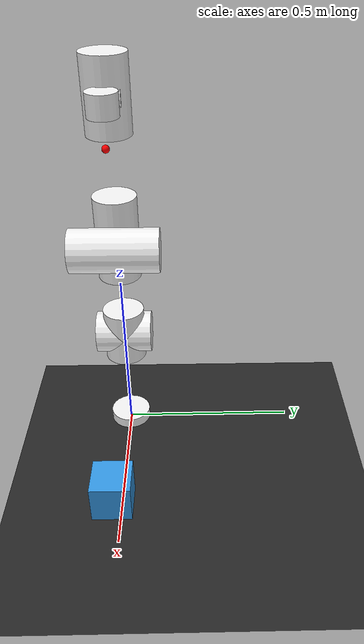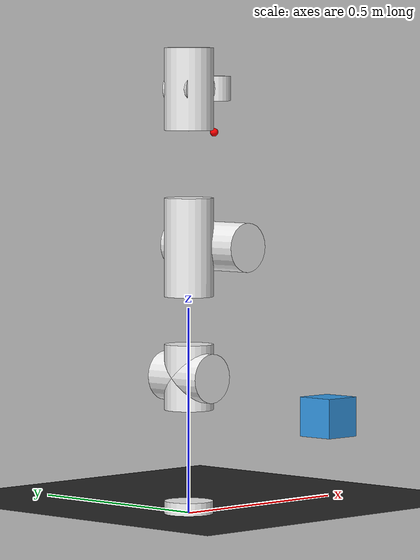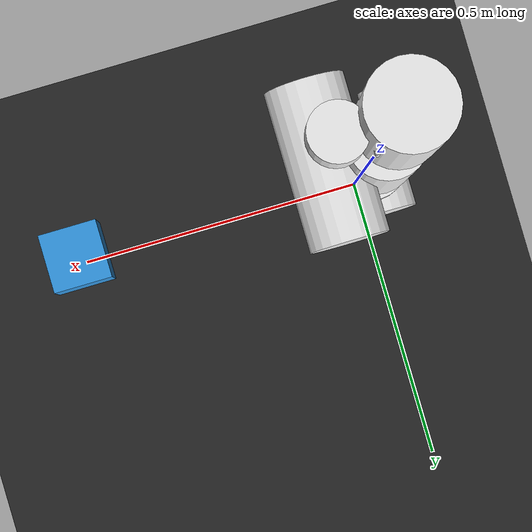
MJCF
<mujoco model="franka_panda">
    <compiler angle="radian" meshdir="assets" autolimits="true"/>

    <option timestep="0.002" gravity="0 0 -9.81" integrator="implicitfast"/>

    <visual>
        <headlight ambient="0.5 0.5 0.5" diffuse="0.8 0.8 0.8" specular="0.3 0.3 0.3"/>
        <rgba haze="0.15 0.25 0.35 1"/>
        <global azimuth="120" elevation="-20"/>
    </visual>

    <asset>
        <texture name="grid" type="2d" builtin="checker" width="512" height="512"
                 rgb1="0.1 0.1 0.1" rgb2="0.2 0.2 0.2"/>
        <material name="grid" texture="grid" texrepeat="2 2" texuniform="true" reflectance="0.2"/>
        <material name="panda_white" rgba="0.95 0.95 0.95 1"/>
    </asset>

    <worldbody>
        <!-- Ground -->
        <light name="spotlight" mode="targetbodycom" target="panda_link0"
               pos="0 0 3" dir="0 0 -1" diffuse="0.8 0.8 0.8" specular="0.3 0.3 0.3"/>
        <geom name="floor" type="plane" size="2 2 0.05" material="grid" condim="3"/>

        <!-- Panda Robot -->
        <body name="panda_link0" pos="0 0 0">
            <inertial mass="3.06" pos="0 0 0.05"
                      diaginertia="0.3 0.3 0.3"/>
            <geom type="cylinder" size="0.06 0.03" rgba="0.95 0.95 0.95 1"/>

            <!-- Joint 1 (Base rotation) -->
            <body name="panda_link1" pos="0 0 0.333">
                <inertial mass="2.74" pos="0 0 -0.07"
                          diaginertia="0.1 0.1 0.1"/>
                <joint name="panda_joint1" type="hinge" axis="0 0 1"
                       range="-2.8973 2.8973" damping="10"/>
                <geom type="cylinder" size="0.06 0.08" rgba="0.95 0.95 0.95 1"/>

                <!-- Joint 2 (Shoulder) -->
                <body name="panda_link2" pos="0 0 0" quat="0.707107 -0.707107 0 0">
                    <inertial mass="2.74" pos="0 -0.06 0.07"
                              diaginertia="0.1 0.1 0.1"/>
                    <joint name="panda_joint2" type="hinge" axis="0 0 1"
                           range="-1.7628 1.7628" damping="10"/>
                    <geom type="cylinder" size="0.06 0.08" rgba="0.95 0.95 0.95 1"/>

                    <!-- Joint 3 (Upper arm) -->
                    <body name="panda_link3" pos="0 -0.316 0" quat="0.707107 0.707107 0 0">
                        <inertial mass="2.38" pos="0.04 0.03 -0.12"
                                  diaginertia="0.1 0.1 0.1"/>
                        <joint name="panda_joint3" type="hinge" axis="0 0 1"
                               range="-2.8973 2.8973" damping="10"/>
                        <geom type="cylinder" size="0.06 0.12" rgba="0.95 0.95 0.95 1"/>

                        <!-- Joint 4 (Elbow) -->
                        <body name="panda_link4" pos="0.0825 0 0" quat="0.707107 0.707107 0 0">
                            <inertial mass="2.38" pos="-0.04 0.03 0.12"
                                      diaginertia="0.1 0.1 0.1"/>
                            <joint name="panda_joint4" type="hinge" axis="0 0 1"
                                   range="-3.0718 -0.0698" damping="10"/>
                            <geom type="cylinder" size="0.06 0.12" rgba="0.95 0.95 0.95 1"/>

                            <!-- Joint 5 (Forearm) -->
                            <body name="panda_link5" pos="-0.0825 0.384 0" quat="0.707107 -0.707107 0 0">
                                <inertial mass="2.74" pos="0 0.05 -0.26"
                                          diaginertia="0.1 0.1 0.1"/>
                                <joint name="panda_joint5" type="hinge" axis="0 0 1"
                                       range="-2.8973 2.8973" damping="10"/>
                                <geom type="cylinder" size="0.06 0.1" rgba="0.95 0.95 0.95 1"/>

                                <!-- Joint 6 (Wrist) -->
                                <body name="panda_link6" pos="0 0 0" quat="0.707107 0.707107 0 0">
                                    <inertial mass="1.55" pos="0.05 0.01 0.02"
                                              diaginertia="0.05 0.05 0.05"/>
                                    <joint name="panda_joint6" type="hinge" axis="0 0 1"
                                           range="-0.0175 3.7525" damping="5"/>
                                    <geom type="cylinder" size="0.05 0.04" rgba="0.95 0.95 0.95 1"/>

                                    <!-- Joint 7 (Flange) -->
                                    <body name="panda_link7" pos="0.088 0 0" quat="0.707107 0.707107 0 0">
                                        <inertial mass="0.5" pos="0 0 0.05"
                                                  diaginertia="0.01 0.01 0.01"/>
                                        <joint name="panda_joint7" type="hinge" axis="0 0 1"
                                               range="-2.8973 2.8973" damping="5"/>
                                        <geom type="cylinder" size="0.04 0.03" rgba="0.95 0.95 0.95 1"/>

                                        <!-- End effector site -->
                                        <site name="ee_site" pos="0 0 0.107" size="0.01"
                                              rgba="1 0 0 1"/>
                                    </body>
                                </body>
                            </body>
                        </body>
                    </body>
                </body>
            </body>
        </body>

        <!-- Target object for manipulation -->
        <body name="target_box" pos="0.5 0 0.2">
            <freejoint/>
            <geom name="box" type="box" size="0.05 0.05 0.05"
                  rgba="0.2 0.6 0.9 1" mass="0.1" condim="3"/>
            <site name="target_site" pos="0 0 0" size="0.02" rgba="0 1 0 1"/>
        </body>
    </worldbody>

    <actuator>
        <!-- Position servos for all 7 joints -->
        <position name="actuator1" joint="panda_joint1" kp="4500" ctrlrange="-2.8973 2.8973"/>
        <position name="actuator2" joint="panda_joint2" kp="4500" ctrlrange="-1.7628 1.7628"/>
        <position name="actuator3" joint="panda_joint3" kp="3500" ctrlrange="-2.8973 2.8973"/>
        <position name="actuator4" joint="panda_joint4" kp="3500" ctrlrange="-3.0718 -0.0698"/>
        <position name="actuator5" joint="panda_joint5" kp="2000" ctrlrange="-2.8973 2.8973"/>
        <position name="actuator6" joint="panda_joint6" kp="2000" ctrlrange="-0.0175 3.7525"/>
        <position name="actuator7" joint="panda_joint7" kp="2000" ctrlrange="-2.8973 2.8973"/>
    </actuator>
</mujoco>
